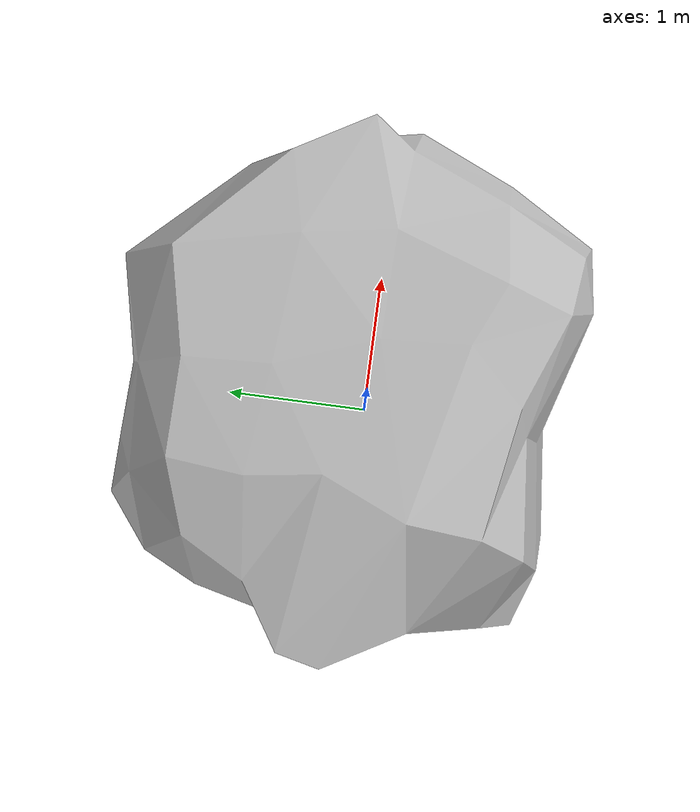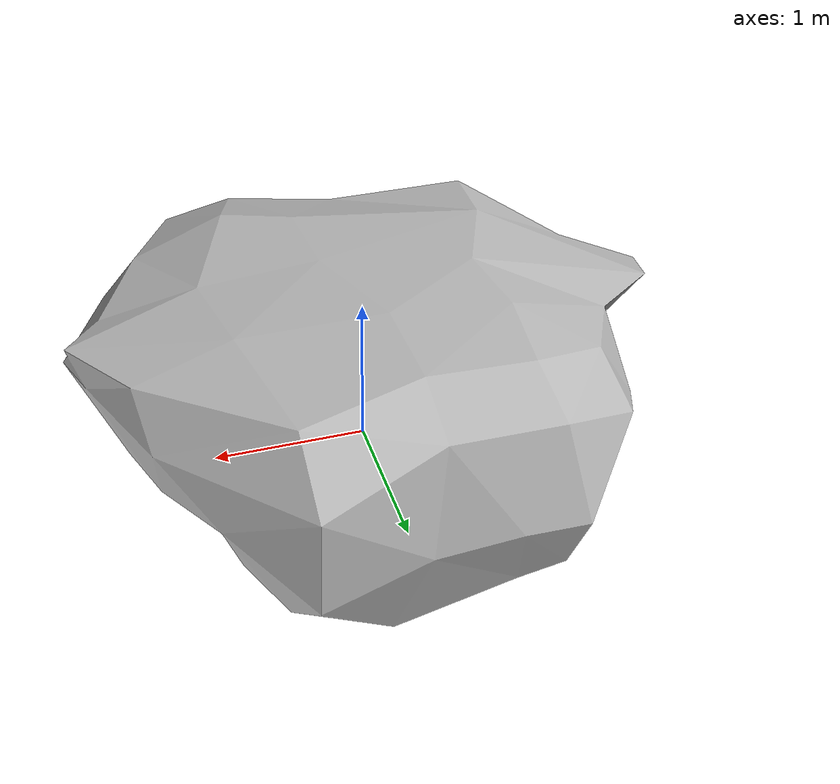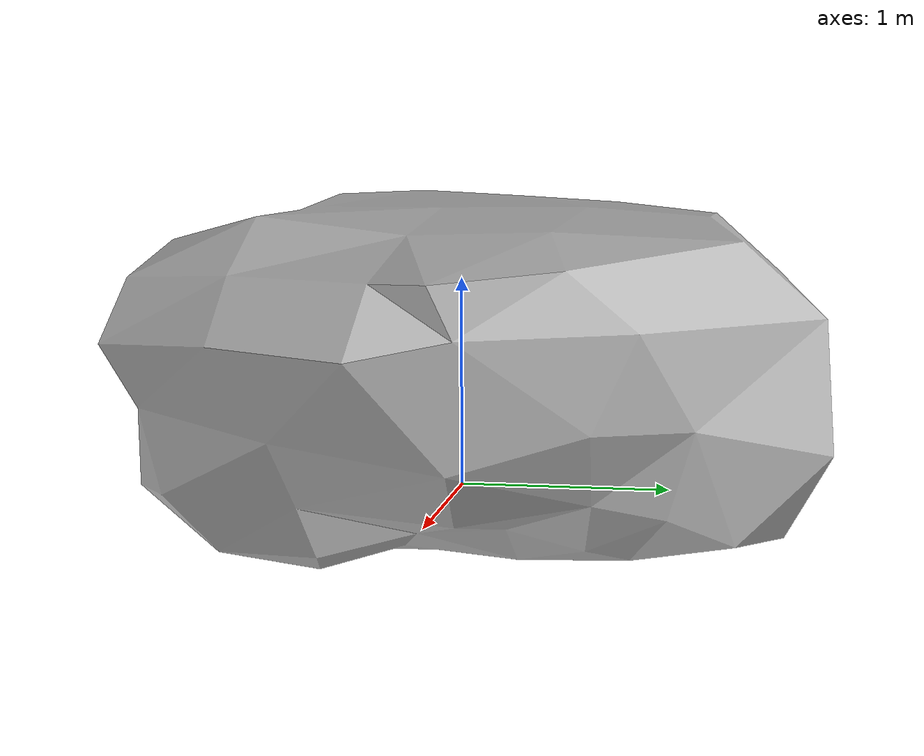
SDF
<sdf version="1.7">
<model name="rock1">
    <static>true</static>
    <link name="link">
        <pose>0 0 0 0 0 0</pose>
        <collision name="collision">
            <geometry>
                <mesh>
                  <uri>model://rock1/meshes/Rock1.dae</uri>
                </mesh>
            </geometry>
        </collision>
        <visual name="visual">
            <cast_shadows>false</cast_shadows>
            <geometry>
                <mesh>
                  <uri>model://rock1/meshes/Rock1.dae</uri>
                  <scale>1 1 1</scale>
                </mesh>
            </geometry>
        </visual>
    </link>
</model>
</sdf>
